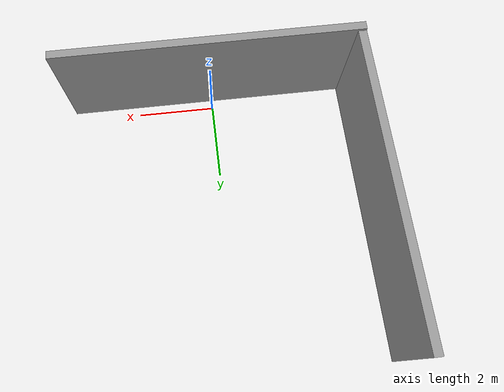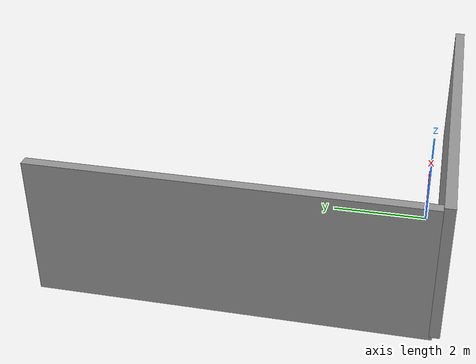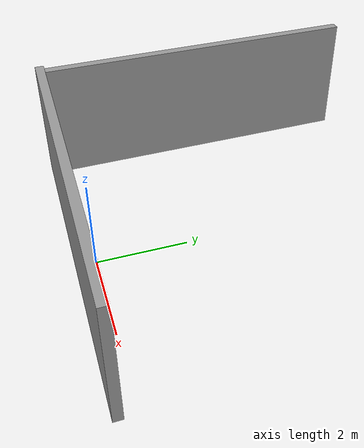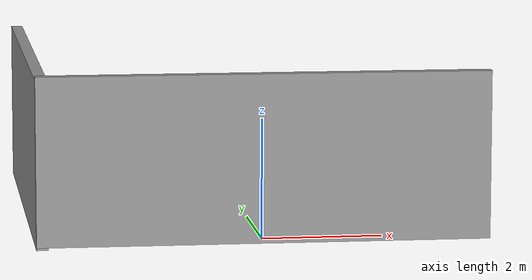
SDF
<?xml version='1.0'?>
<sdf version='1.7'>
  <model name='DEMO_WORLD'>
    <link name='link'>
      <pose>0 -0.345987 1.4 0 -0 0</pose>
      <self_collide>0</self_collide>
      <enable_wind>0</enable_wind>
      <kinematic>0</kinematic>
      <visual name='visual'>
        <cast_shadows>0</cast_shadows>
        <geometry>
          <box>
            <size>7.5 0.2 2.8</size>
          </box>
        </geometry>
        <material>
          <script>
            <uri>model://grey_wall/materials/scripts</uri>
            <uri>model://grey_wall/materials/textures</uri>
            <name>vrc/grey_wall</name>
          </script>
          <shader type='pixel'/>
        </material>
        <pose>0 0 0 0 -0 0</pose>
        <transparency>0</transparency>
      </visual>
      <collision name='collision'>
        <laser_retro>0</laser_retro>
        <max_contacts>10</max_contacts>
        <pose>0 0 0 0 -0 0</pose>
        <geometry>
          <box>
            <size>7.5 0.2 2.8</size>
          </box>
        </geometry>
        <surface>
          <friction>
            <ode>
              <mu>1</mu>
              <mu2>1</mu2>
              <fdir1>0 0 0</fdir1>
              <slip1>0</slip1>
              <slip2>0</slip2>
            </ode>
            <torsional>
              <coefficient>1</coefficient>
              <patch_radius>0</patch_radius>
              <surface_radius>0</surface_radius>
              <use_patch_radius>1</use_patch_radius>
              <ode>
                <slip>0</slip>
              </ode>
            </torsional>
          </friction>
          <bounce>
            <restitution_coefficient>0</restitution_coefficient>
            <threshold>1e+06</threshold>
          </bounce>
          <contact>
            <collide_without_contact>0</collide_without_contact>
            <collide_without_contact_bitmask>1</collide_without_contact_bitmask>
            <collide_bitmask>1</collide_bitmask>
            <ode>
              <soft_cfm>0</soft_cfm>
              <soft_erp>0.2</soft_erp>
              <kp>1e+13</kp>
              <kd>1</kd>
              <max_vel>0.01</max_vel>
              <min_depth>0</min_depth>
            </ode>
            <bullet>
              <split_impulse>1</split_impulse>
              <split_impulse_penetration_threshold>-0.01</split_impulse_penetration_threshold>
              <soft_cfm>0</soft_cfm>
              <soft_erp>0.2</soft_erp>
              <kp>1e+13</kp>
              <kd>1</kd>
            </bullet>
          </contact>
        </surface>
      </collision>
    </link>
    <model name='grey_wall'>
      <static>1</static>
      <link name='link'>
        <pose>0 0 1.4 0 -0 0</pose>
        <collision name='collision'>
          <geometry>
            <box>
              <size>7.5 0.2 2.8</size>
            </box>
          </geometry>
        </collision>
        <visual name='visual'>
          <cast_shadows>0</cast_shadows>
          <geometry>
            <box>
              <size>7.5 0.2 2.8</size>
            </box>
          </geometry>
          <material>
            <script>
              <uri>model://grey_wall/materials/scripts</uri>
              <uri>model://grey_wall/materials/textures</uri>
              <name>vrc/grey_wall</name>
            </script>
          </material>
        </visual>
      </link>
      <pose>-3.68587 3.44357 -0.032507 -0.000334 -0.008933 1.58121</pose>
    </model>
    <static>1</static>
    <allow_auto_disable>1</allow_auto_disable>
  </model>
</sdf>
